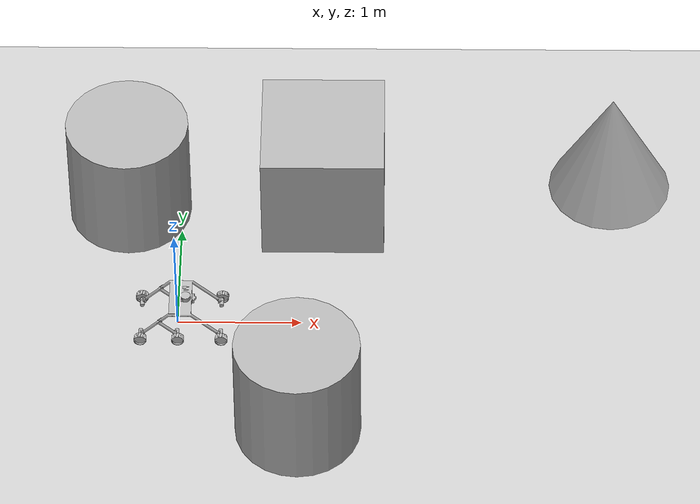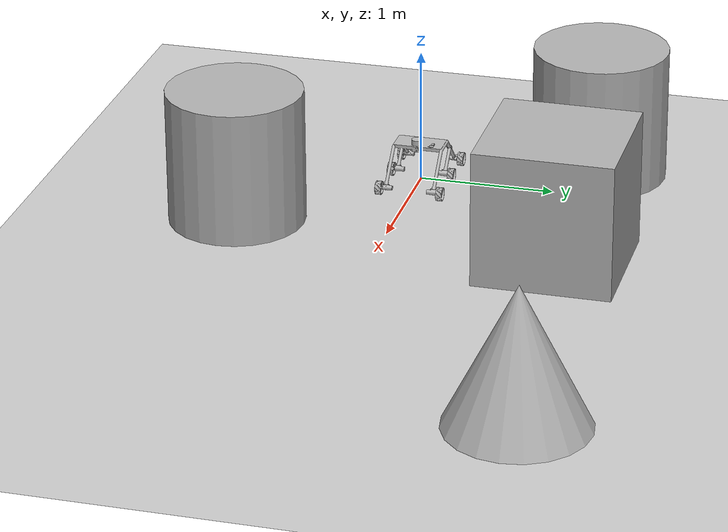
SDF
<sdf version='1.10'>
  <world name='empty'>
    <physics name='1ms' type='ignored'>
      <max_step_size>0.001</max_step_size>
      <real_time_factor>1</real_time_factor>
      <real_time_update_rate>1000</real_time_update_rate>
    </physics>
    <plugin name='gz::sim::systems::Physics' filename='gz-sim-physics-system'/>
    <plugin name='gz::sim::systems::UserCommands' filename='gz-sim-user-commands-system'/>
    <plugin name='gz::sim::systems::SceneBroadcaster' filename='gz-sim-scene-broadcaster-system'/>
    <plugin name='gz::sim::systems::Contact' filename='gz-sim-contact-system'/>
    <gravity>0 0 -9.8000000000000007</gravity>
    <magnetic_field>5.5644999999999998e-06 2.2875799999999999e-05 -4.2388400000000002e-05</magnetic_field>
    <atmosphere type='adiabatic'/>
    <scene>
      <ambient>0.400000006 0.400000006 0.400000006 1</ambient>
      <background>0.699999988 0.699999988 0.699999988 1</background>
      <shadows>true</shadows>
    </scene>
    <model name='ground_plane'>
      <static>true</static>
      <link name='link'>
        <collision name='collision'>
          <geometry>
            <plane>
              <normal>0 0 1</normal>
              <size>100 100</size>
            </plane>
          </geometry>
          <surface>
            <friction>
              <ode/>
            </friction>
            <bounce/>
            <contact/>
          </surface>
        </collision>
        <visual name='visual'>
          <geometry>
            <plane>
              <normal>0 0 1</normal>
              <size>100 100</size>
            </plane>
          </geometry>
          <material>
            <ambient>0.800000012 0.800000012 0.800000012 1</ambient>
            <diffuse>0.800000012 0.800000012 0.800000012 1</diffuse>
            <specular>0.800000012 0.800000012 0.800000012 1</specular>
          </material>
        </visual>
        <pose>0 0 0 0 0 0</pose>
        <inertial>
          <pose>0 0 0 0 0 0</pose>
          <mass>1</mass>
          <inertia>
            <ixx>1</ixx>
            <ixy>0</ixy>
            <ixz>0</ixz>
            <iyy>1</iyy>
            <iyz>0</iyz>
            <izz>1</izz>
          </inertia>
        </inertial>
        <enable_wind>false</enable_wind>
      </link>
      <pose>0 0 0 0 0 0</pose>
      <self_collide>false</self_collide>
    </model>
    <model name='agribot'>
      <link name='base_footprint'>
        <inertial>
          <pose>0.026888595576601719 -0.00022857048424687739 0.23289435111511281 0 0 0</pose>
          <mass>4.3181279999999997</mass>
          <inertia>
            <ixx>0.1082633282381921</ixx>
            <ixy>-3.3557788600149663e-05</ixy>
            <ixz>-0.003562017763863726</ixz>
            <iyy>0.1194583984893426</iyy>
            <iyz>0.00012697845779233459</iyz>
            <izz>0.14874671999492889</izz>
          </inertia>
        </inertial>
        <collision name='base_footprint_fixed_joint_lump__base_link_collision'>
          <pose>0 0 0.27431 0 0 0</pose>
          <geometry>
            <box>
              <size>0.19986000000000001 0.42380000000000001 0.0269</size>
            </box>
          </geometry>
          <surface>
            <friction>
              <ode/>
            </friction>
            <bounce/>
            <contact/>
          </surface>
        </collision>
        <collision name='base_footprint_fixed_joint_lump__base_link_collision_1'>
          <pose>0.21986 0.20380000000000001 0.15372 3.1415926535897931 0.88659265358979344 3.1415926535897931</pose>
          <geometry>
            <cylinder>
              <length>0.35680000000000001</length>
              <radius>0.011900000000000001</radius>
            </cylinder>
          </geometry>
          <surface>
            <friction>
              <ode/>
            </friction>
            <bounce/>
            <contact/>
          </surface>
        </collision>
        <collision name='base_footprint_fixed_joint_lump__base_link_collision_2'>
          <pose>0.21986 -0.20380000000000001 0.15372 3.1415926535897931 0.88659265358979344 3.1415926535897931</pose>
          <geometry>
            <cylinder>
              <length>0.35680000000000001</length>
              <radius>0.011900000000000001</radius>
            </cylinder>
          </geometry>
          <surface>
            <friction>
              <ode/>
            </friction>
            <bounce/>
            <contact/>
          </surface>
        </collision>
        <collision name='base_footprint_fixed_joint_lump__base_link_collision_3'>
          <pose>-0.12493 0.20380000000000001 0.231845 0 0.78500000000000036 0</pose>
          <geometry>
            <cylinder>
              <length>0.10493</length>
              <radius>0.011900000000000001</radius>
            </cylinder>
          </geometry>
          <surface>
            <friction>
              <ode/>
            </friction>
            <bounce/>
            <contact/>
          </surface>
        </collision>
        <collision name='base_footprint_fixed_joint_lump__base_link_collision_4'>
          <pose>-0.246395 0.20380000000000001 0.11038000000000001 0 0.78500000000000036 0</pose>
          <geometry>
            <cylinder>
              <length>0.24293000000000001</length>
              <radius>0.011900000000000001</radius>
            </cylinder>
          </geometry>
          <surface>
            <friction>
              <ode/>
            </friction>
            <bounce/>
            <contact/>
          </surface>
        </collision>
        <collision name='base_footprint_fixed_joint_lump__base_link_collision_5'>
          <pose>-0.086395 0.20380000000000001 0.11038000000000001 3.1415926535897931 0.88659265358979344 3.1415926535897931</pose>
          <geometry>
            <cylinder>
              <length>0.24293000000000001</length>
              <radius>0.011900000000000001</radius>
            </cylinder>
          </geometry>
          <surface>
            <friction>
              <ode/>
            </friction>
            <bounce/>
            <contact/>
          </surface>
        </collision>
        <collision name='base_footprint_fixed_joint_lump__base_link_collision_6'>
          <pose>-0.12493 -0.20380000000000001 0.231845 0 0.78500000000000036 0</pose>
          <geometry>
            <cylinder>
              <length>0.10493</length>
              <radius>0.011900000000000001</radius>
            </cylinder>
          </geometry>
          <surface>
            <friction>
              <ode/>
            </friction>
            <bounce/>
            <contact/>
          </surface>
        </collision>
        <collision name='base_footprint_fixed_joint_lump__base_link_collision_7'>
          <pose>-0.246395 -0.20380000000000001 0.11038000000000001 0 0.78500000000000036 0</pose>
          <geometry>
            <cylinder>
              <length>0.24293000000000001</length>
              <radius>0.011900000000000001</radius>
            </cylinder>
          </geometry>
          <surface>
            <friction>
              <ode/>
            </friction>
            <bounce/>
            <contact/>
          </surface>
        </collision>
        <collision name='base_footprint_fixed_joint_lump__base_link_collision_8'>
          <pose>-0.086395 -0.20380000000000001 0.11038000000000001 3.1415926535897931 0.88659265358979344 3.1415926535897931</pose>
          <geometry>
            <cylinder>
              <length>0.24293000000000001</length>
              <radius>0.011900000000000001</radius>
            </cylinder>
          </geometry>
          <surface>
            <friction>
              <ode/>
            </friction>
            <bounce/>
            <contact/>
          </surface>
        </collision>
        <collision name='base_footprint_fixed_joint_lump__lidar_visual_collision_9'>
          <pose>0.070000000000000007 -0.014999999999999999 0.31430999999999998 0 0 0</pose>
          <geometry>
            <cylinder>
              <length>0.050000000000000003</length>
              <radius>0.040000000000000001</radius>
            </cylinder>
          </geometry>
          <surface>
            <friction>
              <ode/>
            </friction>
            <bounce/>
            <contact/>
          </surface>
        </collision>
        <collision name='base_footprint_fixed_joint_lump__imu_link_visual_collision_10'>
          <pose>0.058999999999999997 0.10199999999999999 0.30131000000000002 0 0 0</pose>
          <geometry>
            <box>
              <size>0.029999999999999999 0.02 0.01</size>
            </box>
          </geometry>
          <surface>
            <friction>
              <ode/>
            </friction>
            <bounce/>
            <contact/>
          </surface>
        </collision>
        <visual name='base_footprint_fixed_joint_lump__base_link_visual'>
          <pose>0 0 0.27431 0 0 0</pose>
          <geometry>
            <mesh>
              <scale>0.001 0.001 0.001</scale>
              <uri>file:///home/sushant/project_ws/install/agribot_description/share/agribot_description/meshes/agribot_baselink.stl</uri>
            </mesh>
          </geometry>
        </visual>
        <visual name='base_footprint_fixed_joint_lump__lidar_visual_visual_1'>
          <pose>0.070000000000000007 -0.014999999999999999 0.31430999999999998 0 0 0</pose>
          <geometry>
            <cylinder>
              <length>0.050000000000000003</length>
              <radius>0.040000000000000001</radius>
            </cylinder>
          </geometry>
        </visual>
        <visual name='base_footprint_fixed_joint_lump__imu_link_visual_visual_2'>
          <pose>0.058999999999999997 0.10199999999999999 0.30131000000000002 0 0 0</pose>
          <geometry>
            <box>
              <size>0.029999999999999999 0.02 0.01</size>
            </box>
          </geometry>
        </visual>
        <sensor name='gpu_lidar' type='gpu_lidar'>
          <pose>0.070000000000000007 -0.014999999999999999 0.31430999999999998 0 0 0</pose>
          <topic>/scan</topic>
          <update_rate>20</update_rate>
          <enable_metrics>false</enable_metrics>
          <lidar>
            <scan>
              <horizontal>
                <samples>720</samples>
                <resolution>1</resolution>
                <min_angle>-3.1415899999999999</min_angle>
                <max_angle>3.1415899999999999</max_angle>
              </horizontal>
              <vertical>
                <samples>1</samples>
                <min_angle>0</min_angle>
                <max_angle>0</max_angle>
                <resolution>1</resolution>
              </vertical>
            </scan>
            <range>
              <min>0.050000000000000003</min>
              <max>12</max>
              <resolution>0.01</resolution>
            </range>
            <noise>
              <type>gaussian</type>
              <mean>0</mean>
              <stddev>0.01</stddev>
            </noise>
            <visibility_mask>4294967295</visibility_mask>
          </lidar>
        </sensor>
        <sensor name='imu_sensor' type='imu'>
          <pose>0.058999999999999997 0.10199999999999999 0.30131000000000002 0 0 0</pose>
          <topic>/imu</topic>
          <update_rate>100</update_rate>
          <enable_metrics>false</enable_metrics>
          <imu>
            <orientation_reference_frame>
              <localization>CUSTOM</localization>
              <custom_rpy>0 0 0</custom_rpy>
              <grav_dir_x>1 0 0</grav_dir_x>
            </orientation_reference_frame>
            <angular_velocity>
              <x>
                <noise type='gaussian'>
                  <mean>0</mean>
                  <stddev>0.001</stddev>
                  <bias_mean>0</bias_mean>
                  <bias_stddev>0</bias_stddev>
                  <dynamic_bias_stddev>0</dynamic_bias_stddev>
                  <dynamic_bias_correlation_time>0</dynamic_bias_correlation_time>
                  <precision>0</precision>
                </noise>
              </x>
              <y>
                <noise type='gaussian'>
                  <mean>0</mean>
                  <stddev>0.001</stddev>
                  <bias_mean>0</bias_mean>
                  <bias_stddev>0</bias_stddev>
                  <dynamic_bias_stddev>0</dynamic_bias_stddev>
                  <dynamic_bias_correlation_time>0</dynamic_bias_correlation_time>
                  <precision>0</precision>
                </noise>
              </y>
              <z>
                <noise type='gaussian'>
                  <mean>0</mean>
                  <stddev>0.001</stddev>
                  <bias_mean>0</bias_mean>
                  <bias_stddev>0</bias_stddev>
                  <dynamic_bias_stddev>0</dynamic_bias_stddev>
                  <dynamic_bias_correlation_time>0</dynamic_bias_correlation_time>
                  <precision>0</precision>
                </noise>
              </z>
            </angular_velocity>
            <linear_acceleration>
              <x>
                <noise type='gaussian'>
                  <mean>0</mean>
                  <stddev>0.01</stddev>
                  <bias_mean>0</bias_mean>
                  <bias_stddev>0</bias_stddev>
                  <dynamic_bias_stddev>0</dynamic_bias_stddev>
                  <dynamic_bias_correlation_time>0</dynamic_bias_correlation_time>
                  <precision>0</precision>
                </noise>
              </x>
              <y>
                <noise type='gaussian'>
                  <mean>0</mean>
                  <stddev>0.01</stddev>
                  <bias_mean>0</bias_mean>
                  <bias_stddev>0</bias_stddev>
                  <dynamic_bias_stddev>0</dynamic_bias_stddev>
                  <dynamic_bias_correlation_time>0</dynamic_bias_correlation_time>
                  <precision>0</precision>
                </noise>
              </y>
              <z>
                <noise type='gaussian'>
                  <mean>0</mean>
                  <stddev>0.01</stddev>
                  <bias_mean>0</bias_mean>
                  <bias_stddev>0</bias_stddev>
                  <dynamic_bias_stddev>0</dynamic_bias_stddev>
                  <dynamic_bias_correlation_time>0</dynamic_bias_correlation_time>
                  <precision>0</precision>
                </noise>
              </z>
            </linear_acceleration>
            <enable_orientation>true</enable_orientation>
          </imu>
        </sensor>
        <pose>0 0 0 0 0 0</pose>
        <enable_wind>false</enable_wind>
      </link>
      <joint name='left_wheel_front_joint' type='revolute'>
        <pose>0 0 0 0 0 0</pose>
        <parent>base_footprint</parent>
        <child>left_wheel_link_front</child>
        <axis>
          <xyz>0 1 0</xyz>
          <limit>
            <lower>-inf</lower>
            <upper>inf</upper>
            <effort>inf</effort>
            <velocity>inf</velocity>
            <stiffness>100000000</stiffness>
            <dissipation>1</dissipation>
          </limit>
          <dynamics>
            <spring_reference>0</spring_reference>
            <spring_stiffness>0</spring_stiffness>
            <damping>0</damping>
            <friction>0</friction>
          </dynamics>
        </axis>
      </joint>
      <link name='left_wheel_link_front'>
        <pose>0.35606000000000004 0.22972999999999996 0.048990000000000027 1.1823318708532346e-33 -2.0685613861653744e-18 -1.2228630268398336e-51</pose>
        <inertial>
          <pose>0 0.0015120000000000001 0 0 0 0</pose>
          <mass>0.22366900000000001</mass>
          <inertia>
            <ixx>0.000183</ixx>
            <ixy>0</ixy>
            <ixz>0</ixz>
            <iyy>0.00032860000000000002</iyy>
            <iyz>0</iyz>
            <izz>0.000183</izz>
          </inertia>
        </inertial>
        <collision name='left_wheel_link_front_collision'>
          <pose>0 0 0 1.5700000000000001 0 0</pose>
          <geometry>
            <cylinder>
              <length>0.044999999999999998</length>
              <radius>0.051999999999999998</radius>
            </cylinder>
          </geometry>
          <surface>
            <friction>
              <ode/>
            </friction>
            <bounce/>
            <contact/>
          </surface>
        </collision>
        <visual name='left_wheel_link_front_visual'>
          <pose>0 0 0 0 0 0</pose>
          <geometry>
            <mesh>
              <scale>0.001 0.001 0.001</scale>
              <uri>file:///home/sushant/project_ws/install/agribot_description/share/agribot_description/meshes/agribot_left_wheel.stl</uri>
            </mesh>
          </geometry>
        </visual>
        <enable_wind>false</enable_wind>
      </link>
      <joint name='left_wheel_mid_joint' type='revolute'>
        <pose>0 0 0 0 0 0</pose>
        <parent>base_footprint</parent>
        <child>left_wheel_link_mid</child>
        <axis>
          <xyz>0 1 0</xyz>
          <limit>
            <lower>-inf</lower>
            <upper>inf</upper>
            <effort>inf</effort>
            <velocity>inf</velocity>
            <stiffness>100000000</stiffness>
            <dissipation>1</dissipation>
          </limit>
          <dynamics>
            <spring_reference>0</spring_reference>
            <spring_stiffness>0</spring_stiffness>
            <damping>0</damping>
            <friction>0</friction>
          </dynamics>
        </axis>
      </joint>
      <link name='left_wheel_link_mid'>
        <pose>0.0063499999999999997 0.22972999999999999 0.048990000000000034 1.932339878348071e-33 -3.380746115999069e-18 1.9721522630525295e-31</pose>
        <inertial>
          <pose>0 0.0015120000000000001 0 0 0 0</pose>
          <mass>0.22366900000000001</mass>
          <inertia>
            <ixx>0.000183</ixx>
            <ixy>0</ixy>
            <ixz>0</ixz>
            <iyy>0.00032860000000000002</iyy>
            <iyz>0</iyz>
            <izz>0.000183</izz>
          </inertia>
        </inertial>
        <collision name='left_wheel_link_mid_collision'>
          <pose>0 0 0 1.5700000000000001 0 0</pose>
          <geometry>
            <cylinder>
              <length>0.044999999999999998</length>
              <radius>0.051999999999999998</radius>
            </cylinder>
          </geometry>
          <surface>
            <friction>
              <ode/>
            </friction>
            <bounce/>
            <contact/>
          </surface>
        </collision>
        <visual name='left_wheel_link_mid_visual'>
          <pose>0 0 0 0 0 0</pose>
          <geometry>
            <mesh>
              <scale>0.001 0.001 0.001</scale>
              <uri>file:///home/sushant/project_ws/install/agribot_description/share/agribot_description/meshes/agribot_left_wheel.stl</uri>
            </mesh>
          </geometry>
        </visual>
        <enable_wind>false</enable_wind>
      </link>
      <joint name='left_wheel_rear_joint' type='revolute'>
        <pose>0 0 0 0 0 0</pose>
        <parent>base_footprint</parent>
        <child>left_wheel_link_rear</child>
        <axis>
          <xyz>0 1 0</xyz>
          <limit>
            <lower>-inf</lower>
            <upper>inf</upper>
            <effort>inf</effort>
            <velocity>inf</velocity>
            <stiffness>100000000</stiffness>
            <dissipation>1</dissipation>
          </limit>
          <dynamics>
            <spring_reference>0</spring_reference>
            <spring_stiffness>0</spring_stiffness>
            <damping>0</damping>
            <friction>0</friction>
          </dynamics>
        </axis>
      </joint>
      <link name='left_wheel_link_rear'>
        <pose>-0.29605999999999993 0.22972999999999999 0.048990000000000034 1.0439603900561122e-33 -1.8264720906507049e-18 -9.5338225809115629e-52</pose>
        <inertial>
          <pose>0 0.0015120000000000001 0 0 0 0</pose>
          <mass>0.22366900000000001</mass>
          <inertia>
            <ixx>0.000183</ixx>
            <ixy>0</ixy>
            <ixz>0</ixz>
            <iyy>0.00032860000000000002</iyy>
            <iyz>0</iyz>
            <izz>0.000183</izz>
          </inertia>
        </inertial>
        <collision name='left_wheel_link_rear_collision'>
          <pose>0 0 0 1.5700000000000001 0 0</pose>
          <geometry>
            <cylinder>
              <length>0.044999999999999998</length>
              <radius>0.051999999999999998</radius>
            </cylinder>
          </geometry>
          <surface>
            <friction>
              <ode/>
            </friction>
            <bounce/>
            <contact/>
          </surface>
        </collision>
        <visual name='left_wheel_link_rear_visual'>
          <pose>0 0 0 0 0 0</pose>
          <geometry>
            <mesh>
              <scale>0.001 0.001 0.001</scale>
              <uri>file:///home/sushant/project_ws/install/agribot_description/share/agribot_description/meshes/agribot_left_wheel.stl</uri>
            </mesh>
          </geometry>
        </visual>
        <enable_wind>false</enable_wind>
      </link>
      <joint name='right_wheel_front_joint' type='revolute'>
        <pose>0 0 0 0 0 0</pose>
        <parent>base_footprint</parent>
        <child>right_wheel_link_front</child>
        <axis>
          <xyz>0 1 0</xyz>
          <limit>
            <lower>-inf</lower>
            <upper>inf</upper>
            <effort>inf</effort>
            <velocity>inf</velocity>
            <stiffness>100000000</stiffness>
            <dissipation>1</dissipation>
          </limit>
          <dynamics>
            <spring_reference>0</spring_reference>
            <spring_stiffness>0</spring_stiffness>
            <damping>0</damping>
            <friction>0</friction>
          </dynamics>
        </axis>
      </joint>
      <link name='right_wheel_link_front'>
        <pose>0.35605999999999993 -0.22973000000000002 0.04899000000000004 2.620073501214205e-33 -4.5839777174745763e-18 -6.0051792738557564e-51</pose>
        <inertial>
          <pose>0 0.0015120000000000001 0 0 0 0</pose>
          <mass>0.22366900000000001</mass>
          <inertia>
            <ixx>0.000183</ixx>
            <ixy>0</ixy>
            <ixz>0</ixz>
            <iyy>0.00032860000000000002</iyy>
            <iyz>0</iyz>
            <izz>0.000183</izz>
          </inertia>
        </inertial>
        <collision name='right_wheel_link_front_collision'>
          <pose>0 0 0 1.5700000000000001 0 0</pose>
          <geometry>
            <cylinder>
              <length>0.044999999999999998</length>
              <radius>0.051999999999999998</radius>
            </cylinder>
          </geometry>
          <surface>
            <friction>
              <ode/>
            </friction>
            <bounce/>
            <contact/>
          </surface>
        </collision>
        <visual name='right_wheel_link_front_visual'>
          <pose>0 0 0 0 0 0</pose>
          <geometry>
            <mesh>
              <scale>0.001 0.001 0.001</scale>
              <uri>file:///home/sushant/project_ws/install/agribot_description/share/agribot_description/meshes/agribot_right_wheel.stl</uri>
            </mesh>
          </geometry>
        </visual>
        <enable_wind>false</enable_wind>
      </link>
      <joint name='right_wheel_mid_joint' type='revolute'>
        <pose>0 0 0 0 0 0</pose>
        <parent>base_footprint</parent>
        <child>right_wheel_link_mid</child>
        <axis>
          <xyz>0 1 0</xyz>
          <limit>
            <lower>-inf</lower>
            <upper>inf</upper>
            <effort>inf</effort>
            <velocity>inf</velocity>
            <stiffness>100000000</stiffness>
            <dissipation>1</dissipation>
          </limit>
          <dynamics>
            <spring_reference>0</spring_reference>
            <spring_stiffness>0</spring_stiffness>
            <damping>0</damping>
            <friction>0</friction>
          </dynamics>
        </axis>
      </joint>
      <link name='right_wheel_link_mid'>
        <pose>0.006349999999999998 -0.22972999999999999 0.04899000000000004 2.2480276106335313e-33 -3.9330608148553201e-18 1.9721522630525295e-31</pose>
        <inertial>
          <pose>0 0.0015120000000000001 0 0 0 0</pose>
          <mass>0.22366900000000001</mass>
          <inertia>
            <ixx>0.000183</ixx>
            <ixy>0</ixy>
            <ixz>0</ixz>
            <iyy>0.00032860000000000002</iyy>
            <iyz>0</iyz>
            <izz>0.000183</izz>
          </inertia>
        </inertial>
        <collision name='right_wheel_link_mid_collision'>
          <pose>0 0 0 1.5700000000000001 0 0</pose>
          <geometry>
            <cylinder>
              <length>0.044999999999999998</length>
              <radius>0.051999999999999998</radius>
            </cylinder>
          </geometry>
          <surface>
            <friction>
              <ode/>
            </friction>
            <bounce/>
            <contact/>
          </surface>
        </collision>
        <visual name='right_wheel_link_mid_visual'>
          <pose>0 0 0 0 0 0</pose>
          <geometry>
            <mesh>
              <scale>0.001 0.001 0.001</scale>
              <uri>file:///home/sushant/project_ws/install/agribot_description/share/agribot_description/meshes/agribot_right_wheel.stl</uri>
            </mesh>
          </geometry>
        </visual>
        <enable_wind>false</enable_wind>
      </link>
      <joint name='right_wheel_rear_joint' type='revolute'>
        <pose>0 0 0 0 0 0</pose>
        <parent>base_footprint</parent>
        <child>right_wheel_link_rear</child>
        <axis>
          <xyz>0 1 0</xyz>
          <limit>
            <lower>-inf</lower>
            <upper>inf</upper>
            <effort>inf</effort>
            <velocity>inf</velocity>
            <stiffness>100000000</stiffness>
            <dissipation>1</dissipation>
          </limit>
          <dynamics>
            <spring_reference>0</spring_reference>
            <spring_stiffness>0</spring_stiffness>
            <damping>0</damping>
            <friction>0</friction>
          </dynamics>
        </axis>
      </joint>
      <link name='right_wheel_link_rear'>
        <pose>-0.29606000000000005 -0.22972999999999999 0.04899000000000004 2.4539789963433966e-33 -4.293385239176788e-18 -5.267938600075304e-51</pose>
        <inertial>
          <pose>0 0.0015120000000000001 0 0 0 0</pose>
          <mass>0.22366900000000001</mass>
          <inertia>
            <ixx>0.000183</ixx>
            <ixy>0</ixy>
            <ixz>0</ixz>
            <iyy>0.00032860000000000002</iyy>
            <iyz>0</iyz>
            <izz>0.000183</izz>
          </inertia>
        </inertial>
        <collision name='right_wheel_link_rear_collision'>
          <pose>0 0 0 1.5700000000000001 0 0</pose>
          <geometry>
            <cylinder>
              <length>0.044999999999999998</length>
              <radius>0.051999999999999998</radius>
            </cylinder>
          </geometry>
          <surface>
            <friction>
              <ode/>
            </friction>
            <bounce/>
            <contact/>
          </surface>
        </collision>
        <visual name='right_wheel_link_rear_visual'>
          <pose>0 0 0 0 0 0</pose>
          <geometry>
            <mesh>
              <scale>0.001 0.001 0.001</scale>
              <uri>file:///home/sushant/project_ws/install/agribot_description/share/agribot_description/meshes/agribot_right_wheel.stl</uri>
            </mesh>
          </geometry>
        </visual>
        <enable_wind>false</enable_wind>
      </link>
      <plugin name='gz_ros2_control::GazeboSimROS2ControlPlugin' filename='gz_ros2_control-system'>
        <parameters>/home/sushant/project_ws/install/agribot_controller/share/agribot_controller/config/agribot_controller.yaml</parameters>
      </plugin>
      <plugin name='gz::sim::systems::Sensors' filename='gz-sim-sensors-system'/>
      <plugin name='gz::sim::systems::Imu' filename='gz-sim-imu-system'/>
      <frame name='lidar_visual_joint' attached_to='base_laser'>
        <pose>0 0 0 0 0 0</pose>
      </frame>
      <frame name='lidar_visual' attached_to='lidar_visual_joint'>
        <pose>0 0 0 0 0 0</pose>
      </frame>
      <frame name='base_laser_joint' attached_to='base_link'>
        <pose>0.070000000000000007 -0.014999999999999999 0.040000000000000001 0 0 0</pose>
      </frame>
      <frame name='base_laser' attached_to='base_laser_joint'>
        <pose>0 0 0 0 0 0</pose>
      </frame>
      <frame name='camera_optical_joint' attached_to='camera_link'>
        <pose>0 0 0 -1.57079632679 -5.5511151231257827e-17 -1.57079632679</pose>
      </frame>
      <frame name='camera_optical_frame' attached_to='camera_optical_joint'>
        <pose>0 0 0 0 0 0</pose>
      </frame>
      <frame name='camera_joint' attached_to='base_link'>
        <pose>0.13 0 0 0 0 0</pose>
      </frame>
      <frame name='camera_link' attached_to='camera_joint'>
        <pose>0 0 0 0 0 0</pose>
      </frame>
      <frame name='imu_visual_joint' attached_to='imu_link'>
        <pose>0 0 0 0 0 0</pose>
      </frame>
      <frame name='imu_link_visual' attached_to='imu_visual_joint'>
        <pose>0 0 0 0 0 0</pose>
      </frame>
      <frame name='imu_joint' attached_to='base_link'>
        <pose>0.058999999999999997 0.10199999999999999 0.027 0 0 0</pose>
      </frame>
      <frame name='imu_link' attached_to='imu_joint'>
        <pose>0 0 0 0 0 0</pose>
      </frame>
      <frame name='base_joint' attached_to='base_footprint'>
        <pose>0 0 0.27431 0 0 0</pose>
      </frame>
      <frame name='base_link' attached_to='base_joint'>
        <pose>0 0 0 0 0 0</pose>
      </frame>
      <pose>3.2215516351141832e-12 -1.0117004422150122e-12 0.003027799702723545 3.3407705086242868e-10 1.0805456611593179e-09 -1.1427830962145368e-15</pose>
      <static>false</static>
      <self_collide>false</self_collide>
    </model>
    <model name='cylinder'>
      <pose>0.99132217676560463 -1.1185287705874418 0.49999942638036005 8.4333747234676224e-20 1.7102448131684883e-19 1.3625309784207717e-20</pose>
      <link name='cylinder_link'>
        <inertial>
          <inertia>
            <ixx>0.14580000000000001</ixx>
            <ixy>0</ixy>
            <ixz>0</ixz>
            <iyy>0.14580000000000001</iyy>
            <iyz>0</iyz>
            <izz>0.125</izz>
          </inertia>
          <mass>1</mass>
          <pose>0 0 0 0 0 0</pose>
        </inertial>
        <collision name='cylinder_collision'>
          <geometry>
            <cylinder>
              <radius>0.5</radius>
              <length>1</length>
            </cylinder>
          </geometry>
          <surface>
            <friction>
              <ode/>
            </friction>
            <bounce/>
            <contact/>
          </surface>
        </collision>
        <visual name='cylinder_visual'>
          <geometry>
            <cylinder>
              <radius>0.5</radius>
              <length>1</length>
            </cylinder>
          </geometry>
          <material>
            <ambient>0.300000012 0.300000012 0.300000012 1</ambient>
            <diffuse>0.699999988 0.699999988 0.699999988 1</diffuse>
            <specular>1 1 1 1</specular>
          </material>
        </visual>
        <pose>0 0 0 0 0 0</pose>
        <enable_wind>false</enable_wind>
      </link>
      <static>false</static>
      <self_collide>false</self_collide>
    </model>
    <model name='cylinder_0'>
      <pose>-0.43304271859991661 1.255395606499965 0.49999942638036005 2.1722424869812802e-19 5.1414305442386073e-19 7.8564475469536944e-21</pose>
      <link name='cylinder_link'>
        <inertial>
          <inertia>
            <ixx>0.14580000000000001</ixx>
            <ixy>0</ixy>
            <ixz>0</ixz>
            <iyy>0.14580000000000001</iyy>
            <iyz>0</iyz>
            <izz>0.125</izz>
          </inertia>
          <mass>1</mass>
          <pose>0 0 0 0 0 0</pose>
        </inertial>
        <collision name='cylinder_collision'>
          <geometry>
            <cylinder>
              <radius>0.5</radius>
              <length>1</length>
            </cylinder>
          </geometry>
          <surface>
            <friction>
              <ode/>
            </friction>
            <bounce/>
            <contact/>
          </surface>
        </collision>
        <visual name='cylinder_visual'>
          <geometry>
            <cylinder>
              <radius>0.5</radius>
              <length>1</length>
            </cylinder>
          </geometry>
          <material>
            <ambient>0.300000012 0.300000012 0.300000012 1</ambient>
            <diffuse>0.699999988 0.699999988 0.699999988 1</diffuse>
            <specular>1 1 1 1</specular>
          </material>
        </visual>
        <pose>0 0 0 0 0 0</pose>
        <enable_wind>false</enable_wind>
      </link>
      <static>false</static>
      <self_collide>false</self_collide>
    </model>
    <model name='cone'>
      <pose>3.5273516786793553 1.5469919925064626 0.49999999993296756 5.2548544155140844e-17 -7.7132841038066057e-10 -1.848369177196814e-23</pose>
      <link name='cone_link'>
        <inertial>
          <inertia>
            <ixx>0.074999999999999997</ixx>
            <ixy>0</ixy>
            <ixz>0</ixz>
            <iyy>0.074999999999999997</iyy>
            <iyz>0</iyz>
            <izz>0.074999999999999997</izz>
          </inertia>
          <mass>1</mass>
          <pose>0 0 0 0 0 0</pose>
        </inertial>
        <collision name='cone_collision'>
          <geometry>
            <cone>
              <radius>0.5</radius>
              <length>1</length>
            </cone>
          </geometry>
          <surface>
            <friction>
              <ode/>
            </friction>
            <bounce/>
            <contact/>
          </surface>
        </collision>
        <visual name='cone_visual'>
          <geometry>
            <cone>
              <radius>0.5</radius>
              <length>1</length>
            </cone>
          </geometry>
          <material>
            <ambient>0.300000012 0.300000012 0.300000012 1</ambient>
            <diffuse>0.699999988 0.699999988 0.699999988 1</diffuse>
            <specular>1 1 1 1</specular>
          </material>
        </visual>
        <pose>0 0 0 0 0 0</pose>
        <enable_wind>false</enable_wind>
      </link>
      <static>false</static>
      <self_collide>false</self_collide>
    </model>
    <model name='box'>
      <pose>1.1605770246655172 1.2757939043909505 0.49999999990199806 6.2287739151293738e-22 9.3279666454713669e-22 -3.6315533669320137e-22</pose>
      <link name='box_link'>
        <inertial>
          <inertia>
            <ixx>0.16666</ixx>
            <ixy>0</ixy>
            <ixz>0</ixz>
            <iyy>0.16666</iyy>
            <iyz>0</iyz>
            <izz>0.16666</izz>
          </inertia>
          <mass>1</mass>
          <pose>0 0 0 0 0 0</pose>
        </inertial>
        <collision name='box_collision'>
          <geometry>
            <box>
              <size>1 1 1</size>
            </box>
          </geometry>
          <surface>
            <friction>
              <ode/>
            </friction>
            <bounce/>
            <contact/>
          </surface>
        </collision>
        <visual name='box_visual'>
          <geometry>
            <box>
              <size>1 1 1</size>
            </box>
          </geometry>
          <material>
            <ambient>0.300000012 0.300000012 0.300000012 1</ambient>
            <diffuse>0.699999988 0.699999988 0.699999988 1</diffuse>
            <specular>1 1 1 1</specular>
          </material>
        </visual>
        <pose>0 0 0 0 0 0</pose>
        <enable_wind>false</enable_wind>
      </link>
      <static>false</static>
      <self_collide>false</self_collide>
    </model>
    <light name='sun' type='directional'>
      <pose>0 0 10 0 0 0</pose>
      <cast_shadows>true</cast_shadows>
      <intensity>1</intensity>
      <direction>-0.5 0.10000000000000001 -0.90000000000000002</direction>
      <diffuse>0.800000012 0.800000012 0.800000012 1</diffuse>
      <specular>0.200000003 0.200000003 0.200000003 1</specular>
      <attenuation>
        <range>1000</range>
        <linear>0.01</linear>
        <constant>0.90000000000000002</constant>
        <quadratic>0.001</quadratic>
      </attenuation>
      <spot>
        <inner_angle>0</inner_angle>
        <outer_angle>0</outer_angle>
        <falloff>0</falloff>
      </spot>
    </light>
  </world>
</sdf>
